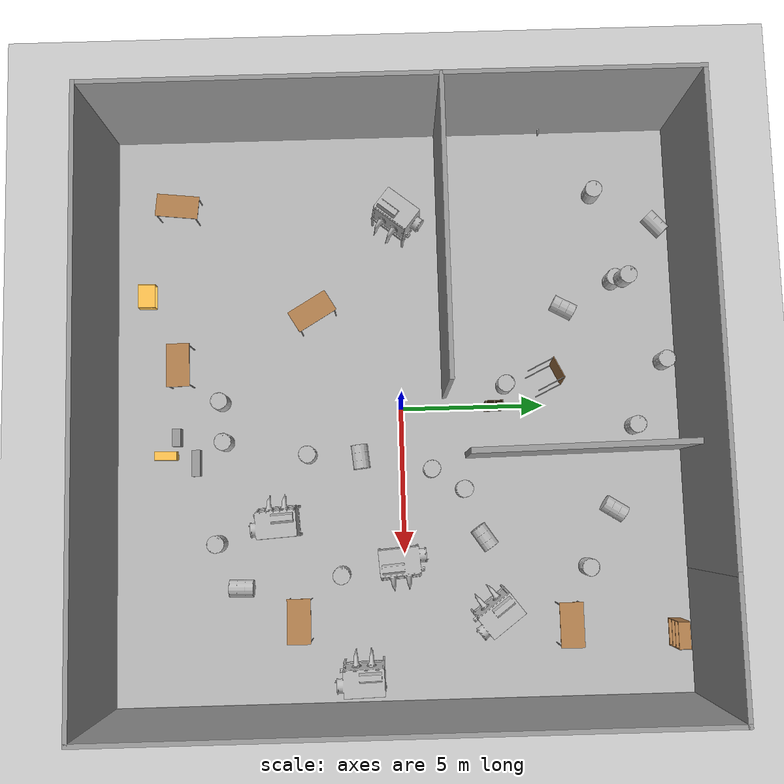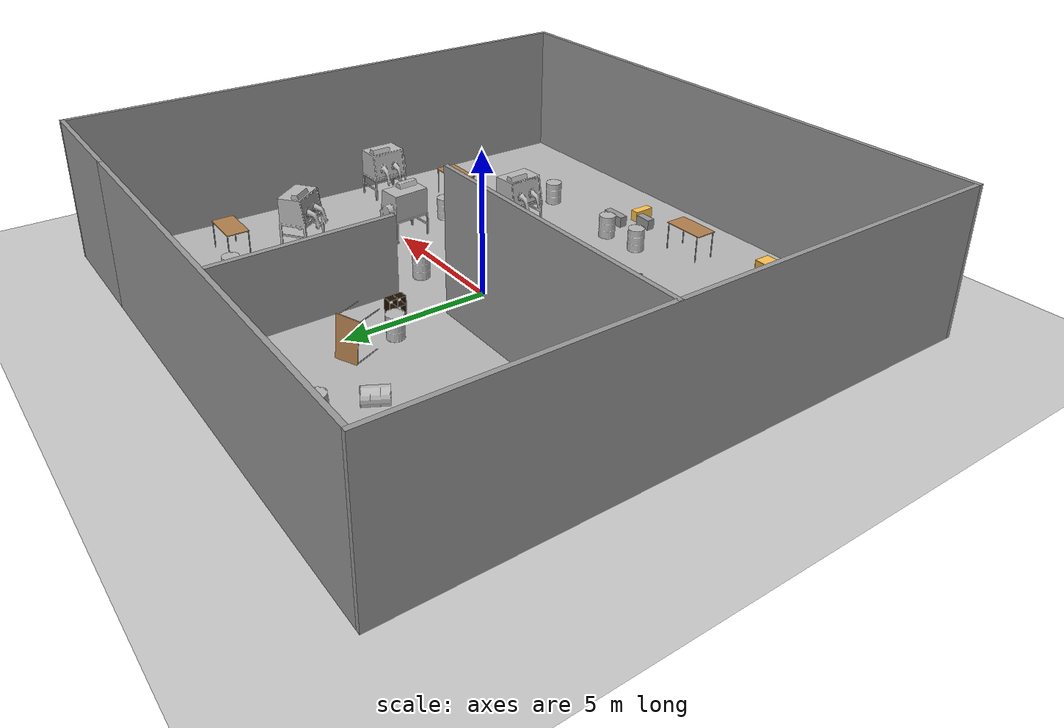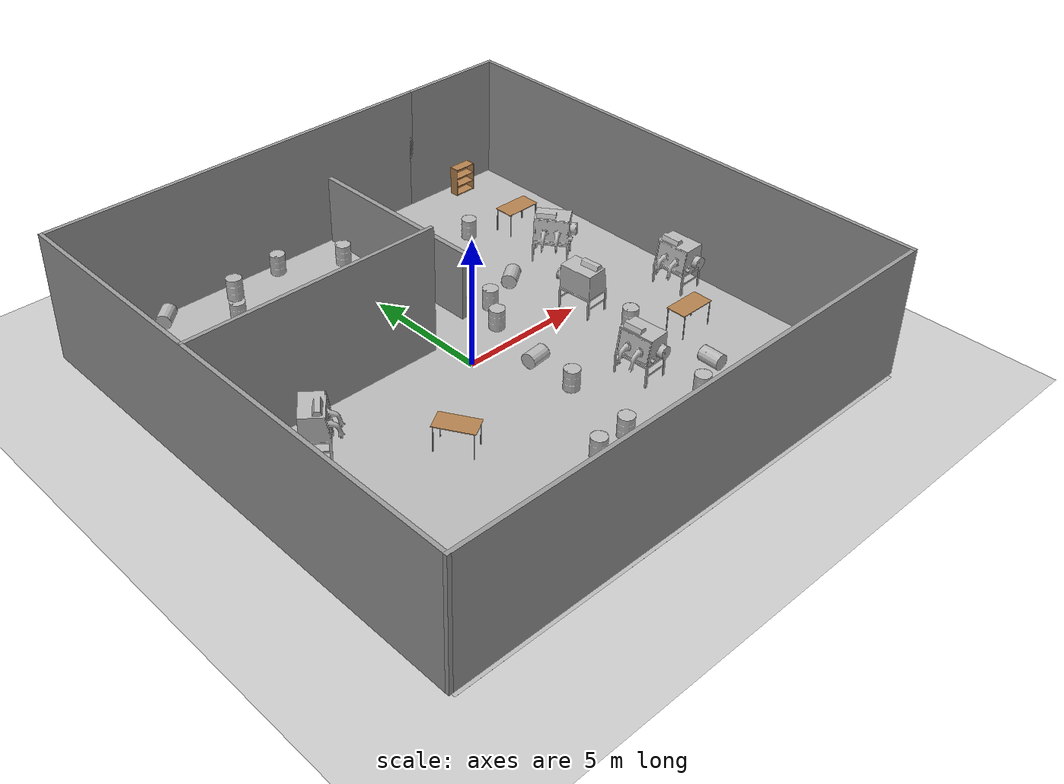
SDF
<sdf version="1.7">
 <world name="default">
  <model name="ground_plane">
   <static>1</static>
   <link name="link">
    <collision name="collision">
     <geometry><plane><normal>0 0 1</normal><size>100 100</size></plane></geometry>
     <surface><friction><ode><mu>100</mu><mu2>50</mu2></ode></friction></surface>
    </collision>
    <visual name="visual">
     <cast_shadows>0</cast_shadows>
     <geometry><plane><normal>0 0 1</normal><size>100 100</size></plane></geometry>
     <material>
      <script><uri>file://media/materials/scripts/gazebo.material</uri><name>Gazebo/Grey</name></script>
     </material>
    </visual>
   </link>
  </model>
  <gravity>0 0 -9.8</gravity>
  <magnetic_field>6e-06 2.3e-05 -4.2e-05</magnetic_field>
  <atmosphere type="adiabatic"/>
  <physics type="ode">
   <max_step_size>0.001</max_step_size>
   <real_time_factor>1</real_time_factor>
   <real_time_update_rate>1000</real_time_update_rate>
  </physics>
  <scene><ambient>0.4 0.4 0.4 1</ambient><background>0.7 0.7 0.7 1</background><shadows>1</shadows></scene>
  <audio><device>default</device></audio>
  <spherical_coordinates>
   <surface_model>EARTH_WGS84</surface_model>
   <latitude_deg>0</latitude_deg>
   <longitude_deg>0</longitude_deg>
   <elevation>0</elevation>
   <heading_deg>0</heading_deg>
  </spherical_coordinates>
  <model name="table_clone_0">
   <static>1</static>
   <link name="link">
    <collision name="surface">
     <pose>0 0 1 0 -0 0</pose>
     <geometry><box><size>1.5 0.8 0.03</size></box></geometry>
     <surface><friction><ode><mu>0.6</mu><mu2>0.6</mu2></ode></friction></surface>
    </collision>
    <visual name="visual1">
     <pose>0 0 1 0 -0 0</pose>
     <geometry><box><size>1.5 0.8 0.03</size></box></geometry>
     <material>
      <script><uri>file://media/materials/scripts/gazebo.material</uri><name>Gazebo/Wood</name></script>
     </material>
    </visual>
    <collision name="front_left_leg">
     <pose>0.68 0.38 0.5 0 -0 0</pose>
     <geometry><cylinder><radius>0.02</radius><length>1</length></cylinder></geometry>
    </collision>
    <visual name="front_left_leg">
     <pose>0.68 0.38 0.5 0 -0 0</pose>
     <geometry><cylinder><radius>0.02</radius><length>1</length></cylinder></geometry>
     <material>
      <script><uri>file://media/materials/scripts/gazebo.material</uri><name>Gazebo/Grey</name></script>
     </material>
    </visual>
    <collision name="front_right_leg">
     <pose>0.68 -0.38 0.5 0 -0 0</pose>
     <geometry><cylinder><radius>0.02</radius><length>1</length></cylinder></geometry>
    </collision>
    <visual name="front_right_leg">
     <pose>0.68 -0.38 0.5 0 -0 0</pose>
     <geometry><cylinder><radius>0.02</radius><length>1</length></cylinder></geometry>
     <material>
      <script><uri>file://media/materials/scripts/gazebo.material</uri><name>Gazebo/Grey</name></script>
     </material>
    </visual>
    <collision name="back_right_leg">
     <pose>-0.68 -0.38 0.5 0 -0 0</pose>
     <geometry><cylinder><radius>0.02</radius><length>1</length></cylinder></geometry>
    </collision>
    <visual name="back_right_leg">
     <pose>-0.68 -0.38 0.5 0 -0 0</pose>
     <geometry><cylinder><radius>0.02</radius><length>1</length></cylinder></geometry>
     <material>
      <script><uri>file://media/materials/scripts/gazebo.material</uri><name>Gazebo/Grey</name></script>
     </material>
    </visual>
    <collision name="back_left_leg">
     <pose>-0.68 0.38 0.5 0 -0 0</pose>
     <geometry><cylinder><radius>0.02</radius><length>1</length></cylinder></geometry>
    </collision>
    <visual name="back_left_leg">
     <pose>-0.68 0.38 0.5 0 -0 0</pose>
     <geometry><cylinder><radius>0.02</radius><length>1</length></cylinder></geometry>
     <material>
      <script><uri>file://media/materials/scripts/gazebo.material</uri><name>Gazebo/Grey</name></script>
     </material>
    </visual>
   </link>
   <pose>7.49547 5.50444 0 0 -0 0</pose>
  </model>
  <model name="table_clone_3">
   <static>1</static>
   <link name="link">
    <collision name="surface">
     <pose>0 0 1 0 -0 0</pose>
     <geometry><box><size>1.5 0.8 0.03</size></box></geometry>
     <surface><friction><ode><mu>0.6</mu><mu2>0.6</mu2></ode></friction></surface>
    </collision>
    <visual name="visual1">
     <pose>0 0 1 0 -0 0</pose>
     <geometry><box><size>1.5 0.8 0.03</size></box></geometry>
     <material>
      <script><uri>file://media/materials/scripts/gazebo.material</uri><name>Gazebo/Wood</name></script>
     </material>
    </visual>
    <collision name="front_left_leg">
     <pose>0.68 0.38 0.5 0 -0 0</pose>
     <geometry><cylinder><radius>0.02</radius><length>1</length></cylinder></geometry>
    </collision>
    <visual name="front_left_leg">
     <pose>0.68 0.38 0.5 0 -0 0</pose>
     <geometry><cylinder><radius>0.02</radius><length>1</length></cylinder></geometry>
     <material>
      <script><uri>file://media/materials/scripts/gazebo.material</uri><name>Gazebo/Grey</name></script>
     </material>
    </visual>
    <collision name="front_right_leg">
     <pose>0.68 -0.38 0.5 0 -0 0</pose>
     <geometry><cylinder><radius>0.02</radius><length>1</length></cylinder></geometry>
    </collision>
    <visual name="front_right_leg">
     <pose>0.68 -0.38 0.5 0 -0 0</pose>
     <geometry><cylinder><radius>0.02</radius><length>1</length></cylinder></geometry>
     <material>
      <script><uri>file://media/materials/scripts/gazebo.material</uri><name>Gazebo/Grey</name></script>
     </material>
    </visual>
    <collision name="back_right_leg">
     <pose>-0.68 -0.38 0.5 0 -0 0</pose>
     <geometry><cylinder><radius>0.02</radius><length>1</length></cylinder></geometry>
    </collision>
    <visual name="back_right_leg">
     <pose>-0.68 -0.38 0.5 0 -0 0</pose>
     <geometry><cylinder><radius>0.02</radius><length>1</length></cylinder></geometry>
     <material>
      <script><uri>file://media/materials/scripts/gazebo.material</uri><name>Gazebo/Grey</name></script>
     </material>
    </visual>
    <collision name="back_left_leg">
     <pose>-0.68 0.38 0.5 0 -0 0</pose>
     <geometry><cylinder><radius>0.02</radius><length>1</length></cylinder></geometry>
    </collision>
    <visual name="back_left_leg">
     <pose>-0.68 0.38 0.5 0 -0 0</pose>
     <geometry><cylinder><radius>0.02</radius><length>1</length></cylinder></geometry>
     <material>
      <script><uri>file://media/materials/scripts/gazebo.material</uri><name>Gazebo/Grey</name></script>
     </material>
    </visual>
   </link>
   <pose>-3.39341 -2.98007 0.052064 0 0 -1.03174</pose>
  </model>
  <model name="table_clone_6">
   <static>1</static>
   <link name="link">
    <collision name="surface">
     <pose>0 0 1 0 -0 0</pose>
     <geometry><box><size>1.5 0.8 0.03</size></box></geometry>
     <surface><friction><ode><mu>0.6</mu><mu2>0.6</mu2></ode></friction></surface>
    </collision>
    <visual name="visual1">
     <pose>0 0 1 0 -0 0</pose>
     <geometry><box><size>1.5 0.8 0.03</size></box></geometry>
     <material>
      <script><uri>file://media/materials/scripts/gazebo.material</uri><name>Gazebo/Wood</name></script>
     </material>
    </visual>
    <collision name="front_left_leg">
     <pose>0.68 0.38 0.5 0 -0 0</pose>
     <geometry><cylinder><radius>0.02</radius><length>1</length></cylinder></geometry>
    </collision>
    <visual name="front_left_leg">
     <pose>0.68 0.38 0.5 0 -0 0</pose>
     <geometry><cylinder><radius>0.02</radius><length>1</length></cylinder></geometry>
     <material>
      <script><uri>file://media/materials/scripts/gazebo.material</uri><name>Gazebo/Grey</name></script>
     </material>
    </visual>
    <collision name="front_right_leg">
     <pose>0.68 -0.38 0.5 0 -0 0</pose>
     <geometry><cylinder><radius>0.02</radius><length>1</length></cylinder></geometry>
    </collision>
    <visual name="front_right_leg">
     <pose>0.68 -0.38 0.5 0 -0 0</pose>
     <geometry><cylinder><radius>0.02</radius><length>1</length></cylinder></geometry>
     <material>
      <script><uri>file://media/materials/scripts/gazebo.material</uri><name>Gazebo/Grey</name></script>
     </material>
    </visual>
    <collision name="back_right_leg">
     <pose>-0.68 -0.38 0.5 0 -0 0</pose>
     <geometry><cylinder><radius>0.02</radius><length>1</length></cylinder></geometry>
    </collision>
    <visual name="back_right_leg">
     <pose>-0.68 -0.38 0.5 0 -0 0</pose>
     <geometry><cylinder><radius>0.02</radius><length>1</length></cylinder></geometry>
     <material>
      <script><uri>file://media/materials/scripts/gazebo.material</uri><name>Gazebo/Grey</name></script>
     </material>
    </visual>
    <collision name="back_left_leg">
     <pose>-0.68 0.38 0.5 0 -0 0</pose>
     <geometry><cylinder><radius>0.02</radius><length>1</length></cylinder></geometry>
    </collision>
    <visual name="back_left_leg">
     <pose>-0.68 0.38 0.5 0 -0 0</pose>
     <geometry><cylinder><radius>0.02</radius><length>1</length></cylinder></geometry>
     <material>
      <script><uri>file://media/materials/scripts/gazebo.material</uri><name>Gazebo/Grey</name></script>
     </material>
    </visual>
   </link>
   <pose>-7.31794 -7.66718 -0.127424 0 -0 1.46374</pose>
  </model>
  <model name="table_clone_9">
   <static>1</static>
   <link name="link">
    <collision name="surface">
     <pose>0 0 1 0 -0 0</pose>
     <geometry><box><size>1.5 0.8 0.03</size></box></geometry>
     <surface><friction><ode><mu>0.6</mu><mu2>0.6</mu2></ode></friction></surface>
    </collision>
    <visual name="visual1">
     <pose>0 0 1 0 -0 0</pose>
     <geometry><box><size>1.5 0.8 0.03</size></box></geometry>
     <material>
      <script><uri>file://media/materials/scripts/gazebo.material</uri><name>Gazebo/Wood</name></script>
     </material>
    </visual>
    <collision name="front_left_leg">
     <pose>0.68 0.38 0.5 0 -0 0</pose>
     <geometry><cylinder><radius>0.02</radius><length>1</length></cylinder></geometry>
    </collision>
    <visual name="front_left_leg">
     <pose>0.68 0.38 0.5 0 -0 0</pose>
     <geometry><cylinder><radius>0.02</radius><length>1</length></cylinder></geometry>
     <material>
      <script><uri>file://media/materials/scripts/gazebo.material</uri><name>Gazebo/Grey</name></script>
     </material>
    </visual>
    <collision name="front_right_leg">
     <pose>0.68 -0.38 0.5 0 -0 0</pose>
     <geometry><cylinder><radius>0.02</radius><length>1</length></cylinder></geometry>
    </collision>
    <visual name="front_right_leg">
     <pose>0.68 -0.38 0.5 0 -0 0</pose>
     <geometry><cylinder><radius>0.02</radius><length>1</length></cylinder></geometry>
     <material>
      <script><uri>file://media/materials/scripts/gazebo.material</uri><name>Gazebo/Grey</name></script>
     </material>
    </visual>
    <collision name="back_right_leg">
     <pose>-0.68 -0.38 0.5 0 -0 0</pose>
     <geometry><cylinder><radius>0.02</radius><length>1</length></cylinder></geometry>
    </collision>
    <visual name="back_right_leg">
     <pose>-0.68 -0.38 0.5 0 -0 0</pose>
     <geometry><cylinder><radius>0.02</radius><length>1</length></cylinder></geometry>
     <material>
      <script><uri>file://media/materials/scripts/gazebo.material</uri><name>Gazebo/Grey</name></script>
     </material>
    </visual>
    <collision name="back_left_leg">
     <pose>-0.68 0.38 0.5 0 -0 0</pose>
     <geometry><cylinder><radius>0.02</radius><length>1</length></cylinder></geometry>
    </collision>
    <visual name="back_left_leg">
     <pose>-0.68 0.38 0.5 0 -0 0</pose>
     <geometry><cylinder><radius>0.02</radius><length>1</length></cylinder></geometry>
     <material>
      <script><uri>file://media/materials/scripts/gazebo.material</uri><name>Gazebo/Grey</name></script>
     </material>
    </visual>
   </link>
   <pose>-1.64837 -7.6314 0 0 -0 0</pose>
  </model>
  <model name="table_clone_12">
   <static>1</static>
   <link name="link">
    <collision name="surface">
     <pose>0 0 1 0 -0 0</pose>
     <geometry><box><size>1.5 0.8 0.03</size></box></geometry>
     <surface><friction><ode><mu>0.6</mu><mu2>0.6</mu2></ode></friction></surface>
    </collision>
    <visual name="visual1">
     <pose>0 0 1 0 -0 0</pose>
     <geometry><box><size>1.5 0.8 0.03</size></box></geometry>
     <material>
      <script><uri>file://media/materials/scripts/gazebo.material</uri><name>Gazebo/Wood</name></script>
     </material>
    </visual>
    <collision name="front_left_leg">
     <pose>0.68 0.38 0.5 0 -0 0</pose>
     <geometry><cylinder><radius>0.02</radius><length>1</length></cylinder></geometry>
    </collision>
    <visual name="front_left_leg">
     <pose>0.68 0.38 0.5 0 -0 0</pose>
     <geometry><cylinder><radius>0.02</radius><length>1</length></cylinder></geometry>
     <material>
      <script><uri>file://media/materials/scripts/gazebo.material</uri><name>Gazebo/Grey</name></script>
     </material>
    </visual>
    <collision name="front_right_leg">
     <pose>0.68 -0.38 0.5 0 -0 0</pose>
     <geometry><cylinder><radius>0.02</radius><length>1</length></cylinder></geometry>
    </collision>
    <visual name="front_right_leg">
     <pose>0.68 -0.38 0.5 0 -0 0</pose>
     <geometry><cylinder><radius>0.02</radius><length>1</length></cylinder></geometry>
     <material>
      <script><uri>file://media/materials/scripts/gazebo.material</uri><name>Gazebo/Grey</name></script>
     </material>
    </visual>
    <collision name="back_right_leg">
     <pose>-0.68 -0.38 0.5 0 -0 0</pose>
     <geometry><cylinder><radius>0.02</radius><length>1</length></cylinder></geometry>
    </collision>
    <visual name="back_right_leg">
     <pose>-0.68 -0.38 0.5 0 -0 0</pose>
     <geometry><cylinder><radius>0.02</radius><length>1</length></cylinder></geometry>
     <material>
      <script><uri>file://media/materials/scripts/gazebo.material</uri><name>Gazebo/Grey</name></script>
     </material>
    </visual>
    <collision name="back_left_leg">
     <pose>-0.68 0.38 0.5 0 -0 0</pose>
     <geometry><cylinder><radius>0.02</radius><length>1</length></cylinder></geometry>
    </collision>
    <visual name="back_left_leg">
     <pose>-0.68 0.38 0.5 0 -0 0</pose>
     <geometry><cylinder><radius>0.02</radius><length>1</length></cylinder></geometry>
     <material>
      <script><uri>file://media/materials/scripts/gazebo.material</uri><name>Gazebo/Grey</name></script>
     </material>
    </visual>
   </link>
   <pose>7.13207 -3.60636 0 0 -0 0</pose>
  </model>
  <model name="bookshelf">
   <static>1</static>
   <link name="link">
    <inertial><mass>1</mass></inertial>
    <collision name="back">
     <pose>0 0.005 0.6 0 -0 0</pose>
     <geometry><box><size>0.9 0.01 1.2</size></box></geometry>
    </collision>
    <visual name="visual1">
     <pose>0 0.005 0.6 0 -0 0</pose>
     <geometry><box><size>0.9 0.01 1.2</size></box></geometry>
     <material>
      <script><uri>file://media/materials/scripts/gazebo.material</uri><name>Gazebo/Wood</name></script>
     </material>
    </visual>
    <collision name="left_side">
     <pose>0.45 -0.195 0.6 0 -0 0</pose>
     <geometry><box><size>0.02 0.4 1.2</size></box></geometry>
    </collision>
    <visual name="visual2">
     <pose>0.45 -0.195 0.6 0 -0 0</pose>
     <geometry><box><size>0.02 0.4 1.2</size></box></geometry>
     <material>
      <script><uri>file://media/materials/scripts/gazebo.material</uri><name>Gazebo/Wood</name></script>
     </material>
    </visual>
    <collision name="right_side">
     <pose>-0.45 -0.195 0.6 0 -0 0</pose>
     <geometry><box><size>0.02 0.4 1.2</size></box></geometry>
    </collision>
    <visual name="visual3">
     <pose>-0.45 -0.195 0.6 0 -0 0</pose>
     <geometry><box><size>0.02 0.4 1.2</size></box></geometry>
     <material>
      <script><uri>file://media/materials/scripts/gazebo.material</uri><name>Gazebo/Wood</name></script>
     </material>
    </visual>
    <collision name="bottom">
     <pose>0 -0.195 0.03 0 -0 0</pose>
     <geometry><box><size>0.88 0.4 0.06</size></box></geometry>
    </collision>
    <visual name="visual4">
     <pose>0 -0.195 0.03 0 -0 0</pose>
     <geometry><box><size>0.88 0.4 0.06</size></box></geometry>
     <material>
      <script><uri>file://media/materials/scripts/gazebo.material</uri><name>Gazebo/Wood</name></script>
     </material>
    </visual>
    <collision name="top">
     <pose>0 -0.195 1.19 0 -0 0</pose>
     <geometry><box><size>0.88 0.4 0.02</size></box></geometry>
    </collision>
    <visual name="visual5">
     <pose>0 -0.195 1.19 0 -0 0</pose>
     <geometry><box><size>0.88 0.4 0.02</size></box></geometry>
     <material>
      <script><uri>file://media/materials/scripts/gazebo.material</uri><name>Gazebo/Wood</name></script>
     </material>
    </visual>
    <collision name="low_shelf">
     <pose>0 -0.195 0.43 0 -0 0</pose>
     <geometry><box><size>0.88 0.4 0.02</size></box></geometry>
    </collision>
    <visual name="visual6">
     <pose>0 -0.195 0.43 0 -0 0</pose>
     <geometry><box><size>0.88 0.4 0.02</size></box></geometry>
     <material>
      <script><uri>file://media/materials/scripts/gazebo.material</uri><name>Gazebo/Wood</name></script>
     </material>
    </visual>
    <collision name="high_shelf">
     <pose>0 -0.195 0.8 0 -0 0</pose>
     <geometry><box><size>0.88 0.4 0.02</size></box></geometry>
    </collision>
    <visual name="visual7">
     <pose>0 -0.195 0.8 0 -0 0</pose>
     <geometry><box><size>0.88 0.4 0.02</size></box></geometry>
     <material>
      <script><uri>file://media/materials/scripts/gazebo.material</uri><name>Gazebo/Wood</name></script>
     </material>
    </visual>
   </link>
   <pose>7.91502 9.37231 0 0 -0 0</pose>
  </model>
  <model name="6_Cube_StorageE">
   <link name="Wall_0">
    <pose>0 0 0.01 0 -0 0</pose>
    <inertial>
     <mass>1.6201</mass>
     <inertia><ixx>0.0119</ixx><iyy>0.0631</iyy><izz>0.0513</izz><ixy>0</ixy><ixz>0</ixz><iyz>0</iyz></inertia>
    </inertial>
    <collision name="Wall_0_Collision"><geometry><box><size>0.616 0.296 0.02</size></box></geometry></collision>
    <visual name="Wall_0_Visual">
     <geometry><box><size>0.616 0.296 0.02</size></box></geometry>
     <material>
      <script><uri>file://media/materials/scripts/gazebo.material</uri><name>Gazebo/Grey</name></script>
      <ambient>0.105882 0.0509804 0 1</ambient>
     </material>
    </visual>
   </link>
   <joint name="0_2" type="fixed">
    <pose>-0.308 0 0 0 -0 0</pose>
    <parent>Wall_2</parent>
    <child>Wall_0</child>
    <axis><xyz>1 0 0</xyz><limit><lower>-1e+16</lower><upper>1e+16</upper></limit></axis>
   </joint>
   <joint name="0_12" type="fixed">
    <parent>Wall_12</parent>
    <child>Wall_0</child>
    <axis><xyz>0 0 1</xyz><limit><lower>-1e+16</lower><upper>1e+16</upper></limit></axis>
   </joint>
   <joint name="0_4" type="fixed">
    <pose>0.308 0 0 0 -0 0</pose>
    <parent>Wall_4</parent>
    <child>Wall_0</child>
    <axis><xyz>1 0 0</xyz><limit><lower>-1e+16</lower><upper>1e+16</upper></limit></axis>
   </joint>
   <link name="Wall_10">
    <pose>0 0 0.61 0 -0 0</pose>
    <inertial>
     <mass>1.6201</mass>
     <inertia><ixx>0.0119</ixx><iyy>0.0631</iyy><izz>0.0513</izz><ixy>0</ixy><ixz>0</ixz><iyz>0</iyz></inertia>
    </inertial>
    <collision name="Wall_10_Collision"><geometry><box><size>0.616 0.296 0.02</size></box></geometry></collision>
    <visual name="Wall_10_Visual">
     <geometry><box><size>0.616 0.296 0.02</size></box></geometry>
     <material>
      <script><uri>file://media/materials/scripts/gazebo.material</uri><name>Gazebo/Grey</name></script>
      <ambient>0.105882 0.0509804 0 1</ambient>
     </material>
    </visual>
   </link>
   <joint name="10_2" type="fixed">
    <pose>-0.308 0 0 0 -0 0</pose>
    <parent>Wall_2</parent>
    <child>Wall_10</child>
    <axis><xyz>1 0 0</xyz><limit><lower>-1e+16</lower><upper>1e+16</upper></limit></axis>
   </joint>
   <joint name="10_12" type="fixed">
    <parent>Wall_12</parent>
    <child>Wall_10</child>
    <axis><xyz>0 0 1</xyz><limit><lower>-1e+16</lower><upper>1e+16</upper></limit></axis>
   </joint>
   <joint name="10_4" type="fixed">
    <pose>0.308 0 0 0 -0 0</pose>
    <parent>Wall_4</parent>
    <child>Wall_10</child>
    <axis><xyz>1 0 0</xyz><limit><lower>-1e+16</lower><upper>1e+16</upper></limit></axis>
   </joint>
   <link name="Wall_12">
    <pose>0 0 0.4575 0 -0 0</pose>
    <inertial>
     <mass>2.4065</mass>
     <inertia><ixx>0.0177</ixx><iyy>0.1855</iyy><izz>0.168</izz><ixy>0</ixy><ixz>0</ixz><iyz>0</iyz></inertia>
    </inertial>
    <collision name="Wall_12_Collision"><geometry><box><size>0.02 0.296 0.915</size></box></geometry></collision>
    <visual name="Wall_12_Visual">
     <geometry><box><size>0.02 0.296 0.915</size></box></geometry>
     <material>
      <script><uri>file://media/materials/scripts/gazebo.material</uri><name>Gazebo/Grey</name></script>
      <ambient>0.105882 0.0509804 0 1</ambient>
     </material>
    </visual>
   </link>
   <link name="Wall_2">
    <pose>-0.298 0 0.4575 0 -0 0</pose>
    <inertial>
     <mass>2.4065</mass>
     <inertia><ixx>0.0177</ixx><iyy>0.1855</iyy><izz>0.168</izz><ixy>0</ixy><ixz>0</ixz><iyz>0</iyz></inertia>
    </inertial>
    <collision name="Wall_2_Collision"><geometry><box><size>0.02 0.296 0.915</size></box></geometry></collision>
    <visual name="Wall_2_Visual">
     <geometry><box><size>0.02 0.296 0.915</size></box></geometry>
     <material>
      <script><uri>file://media/materials/scripts/gazebo.material</uri><name>Gazebo/Grey</name></script>
      <ambient>0.105882 0.0509804 0 1</ambient>
     </material>
    </visual>
   </link>
   <link name="Wall_4">
    <pose>0.298 0 0.4575 0 -0 0</pose>
    <inertial>
     <mass>2.4065</mass>
     <inertia><ixx>0.0177</ixx><iyy>0.1855</iyy><izz>0.168</izz><ixy>0</ixy><ixz>0</ixz><iyz>0</iyz></inertia>
    </inertial>
    <collision name="Wall_4_Collision"><geometry><box><size>0.02 0.296 0.915</size></box></geometry></collision>
    <visual name="Wall_4_Visual">
     <geometry><box><size>0.02 0.296 0.915</size></box></geometry>
     <material>
      <script><uri>file://media/materials/scripts/gazebo.material</uri><name>Gazebo/Grey</name></script>
      <ambient>0.105882 0.0509804 0 1</ambient>
     </material>
    </visual>
   </link>
   <link name="Wall_6">
    <pose>0 0 0.905 0 -0 0</pose>
    <inertial>
     <mass>1.6201</mass>
     <inertia><ixx>0.0119</ixx><iyy>0.0631</iyy><izz>0.0513</izz><ixy>0</ixy><ixz>0</ixz><iyz>0</iyz></inertia>
    </inertial>
    <collision name="Wall_6_Collision"><geometry><box><size>0.616 0.296 0.02</size></box></geometry></collision>
    <visual name="Wall_6_Visual">
     <geometry><box><size>0.616 0.296 0.02</size></box></geometry>
     <material>
      <script><uri>file://media/materials/scripts/gazebo.material</uri><name>Gazebo/Grey</name></script>
      <ambient>0.105882 0.0509804 0 1</ambient>
     </material>
    </visual>
   </link>
   <joint name="6_2" type="fixed">
    <pose>-0.308 0 0 0 -0 0</pose>
    <parent>Wall_2</parent>
    <child>Wall_6</child>
    <axis><xyz>2 0 0</xyz><limit><lower>-1e+16</lower><upper>1e+16</upper></limit></axis>
   </joint>
   <joint name="6_12" type="fixed">
    <parent>Wall_12</parent>
    <child>Wall_6</child>
    <axis><xyz>0 0 1</xyz><limit><lower>-1e+16</lower><upper>1e+16</upper></limit></axis>
   </joint>
   <joint name="6_4" type="fixed">
    <pose>0.308 0 0 0 -0 0</pose>
    <parent>Wall_4</parent>
    <child>Wall_6</child>
    <axis><xyz>1 0 0</xyz><limit><lower>-1e+16</lower><upper>1e+16</upper></limit></axis>
   </joint>
   <link name="Wall_8">
    <pose>0 0 0.305 0 -0 0</pose>
    <inertial>
     <mass>1.6201</mass>
     <inertia><ixx>0.0119</ixx><iyy>0.0631</iyy><izz>0.0513</izz><ixy>0</ixy><ixz>0</ixz><iyz>0</iyz></inertia>
    </inertial>
    <collision name="Wall_8_Collision"><geometry><box><size>0.616 0.296 0.02</size></box></geometry></collision>
    <visual name="Wall_8_Visual">
     <geometry><box><size>0.616 0.296 0.02</size></box></geometry>
     <material>
      <script><uri>file://media/materials/scripts/gazebo.material</uri><name>Gazebo/Grey</name></script>
      <ambient>0.105882 0.0509804 0 1</ambient>
     </material>
    </visual>
   </link>
   <joint name="8_2" type="fixed">
    <pose>-0.308 0 0 0 -0 0</pose>
    <parent>Wall_2</parent>
    <child>Wall_8</child>
    <axis><xyz>1 0 0</xyz><limit><lower>-1e+16</lower><upper>1e+16</upper></limit></axis>
   </joint>
   <joint name="8_12" type="fixed">
    <parent>Wall_12</parent>
    <child>Wall_8</child>
    <axis><xyz>0 0 1</xyz><limit><lower>-1e+16</lower><upper>1e+16</upper></limit></axis>
   </joint>
   <joint name="8_4" type="fixed">
    <pose>0.308 0 0 0 -0 0</pose>
    <parent>Wall_4</parent>
    <child>Wall_8</child>
    <axis><xyz>1 0 0</xyz><limit><lower>-1e+16</lower><upper>1e+16</upper></limit></axis>
   </joint>
   <static>1</static>
   <pose>0.006936 3.21973 0.018397 0 -0 1.59588</pose>
  </model>
  <model name="book_1">
   <link name="cover">
    <pose>0 -0.000108 0.015405 0 -0 0</pose>
    <visual name="visual">
     <geometry><box><size>0.245 0.16 0.03</size></box></geometry>
     <material>
      <script>
       <uri>model://book_1/materials/scripts</uri>
       <uri>model://book_1/materials/textures</uri>
       <name>book_1</name>
      </script>
     </material>
    </visual>
    <collision name="collision"><geometry><box><size>0.245 0.16 0.03</size></box></geometry></collision>
   </link>
   <link name="page">
    <pose>0 0.000608 0.015405 0 -0 0</pose>
    <visual name="visual">
     <geometry><box><size>0.24502 0.15862 0.028</size></box></geometry>
     <material>
      <lighting>1</lighting>
      <ambient>1 1 1 1</ambient>
      <diffuse>1 1 1 1</diffuse>
      <specular>0.01 0.01 0.01 1</specular>
      <emissive>0 0 0 1</emissive>
      <shader type="vertex"><normal_map>__default__</normal_map></shader>
     </material>
    </visual>
    <collision name="collision"><geometry><box><size>0.245 0.16 0.03</size></box></geometry></collision>
   </link>
   <static>1</static>
   <pose>-9.75646 5.15913 0.632128 2.49149 1.54274 -2.11523</pose>
  </model>
  <light name="sun" type="directional">
   <pose>-1.13936 -0.095855 10 0 -0 0</pose>
   <diffuse>0.8 0.8 0.8 1</diffuse>
   <specular>0.2 0.2 0.2 1</specular>
   <attenuation>
    <range>1000</range>
    <constant>0.9</constant>
    <linear>0.01</linear>
    <quadratic>0.001</quadratic>
   </attenuation>
   <direction>-0.5 0.1 -0.9</direction>
   <spot><inner_angle>0</inner_angle><outer_angle>0</outer_angle><falloff>0</falloff></spot>
  </light>
  <model name="toxic_barrel_clone_2">
   <static>0</static>
   <link name="link">
    <visual name="visual">
     <geometry><mesh><uri>model://toxic_barrel/meshes/barrel_red.obj</uri></mesh></geometry>
    </visual>
    <collision name="collision">
     <geometry><mesh><uri>model://toxic_barrel/meshes/barrel_red.obj</uri></mesh></geometry>
    </collision>
    <inertial>
     <inertia><ixx>1</ixx><ixy>0</ixy><ixz>0</ixz><iyy>1</iyy><iyz>0</iyz><izz>1</izz></inertia>
     <mass>1</mass>
    </inertial>
   </link>
   <pose>-1.44084 9.2653 0.427001 1.57079 4e-06 0.702762</pose>
  </model>
  <model name="toxic_barrel_clone_8">
   <static>0</static>
   <link name="link">
    <visual name="visual">
     <geometry><mesh><uri>model://toxic_barrel/meshes/barrel_red.obj</uri></mesh></geometry>
    </visual>
    <collision name="collision">
     <geometry><mesh><uri>model://toxic_barrel/meshes/barrel_red.obj</uri></mesh></geometry>
    </collision>
    <inertial>
     <inertia><ixx>1</ixx><ixy>0</ixy><ixz>0</ixz><iyy>1</iyy><iyz>0</iyz><izz>1</izz></inertia>
     <mass>1</mass>
    </inertial>
   </link>
   <pose>4.50491 -6.41619 0.426999 1.57079 -6e-06 -0.419629</pose>
  </model>
  <model name="toxic_barrel_clone_12">
   <static>0</static>
   <link name="link">
    <visual name="visual">
     <geometry><mesh><uri>model://toxic_barrel/meshes/barrel_red.obj</uri></mesh></geometry>
    </visual>
    <collision name="collision">
     <geometry><mesh><uri>model://toxic_barrel/meshes/barrel_red.obj</uri></mesh></geometry>
    </collision>
    <inertial>
     <inertia><ixx>1</ixx><ixy>0</ixy><ixz>0</ixz><iyy>1</iyy><iyz>0</iyz><izz>1</izz></inertia>
     <mass>1</mass>
    </inertial>
   </link>
   <pose>3.67794 7.27674 0.306205 -1e-06 -0.19638 -0.566941</pose>
  </model>
  <model name="toxic_barrel_clone_12_clone">
   <static>0</static>
   <link name="link">
    <visual name="visual">
     <geometry><mesh><uri>model://toxic_barrel/meshes/barrel_red.obj</uri></mesh></geometry>
    </visual>
    <collision name="collision">
     <geometry><mesh><uri>model://toxic_barrel/meshes/barrel_red.obj</uri></mesh></geometry>
    </collision>
    <inertial>
     <inertia><ixx>1</ixx><ixy>0</ixy><ixz>0</ixz><iyy>1</iyy><iyz>0</iyz><izz>1</izz></inertia>
     <mass>1</mass>
    </inertial>
   </link>
   <pose>5.62038 6.27093 0.426321 -1.57002 0.004007 -0.669122</pose>
  </model>
  <model name="toxic_barrel_clone_12_clone_clone_0">
   <static>0</static>
   <link name="link">
    <visual name="visual">
     <geometry><mesh><uri>model://toxic_barrel/meshes/barrel_red.obj</uri></mesh></geometry>
    </visual>
    <collision name="collision">
     <geometry><mesh><uri>model://toxic_barrel/meshes/barrel_red.obj</uri></mesh></geometry>
    </collision>
    <inertial>
     <inertia><ixx>1</ixx><ixy>0</ixy><ixz>0</ixz><iyy>1</iyy><iyz>0</iyz><izz>1</izz></inertia>
     <mass>1</mass>
    </inertial>
   </link>
   <pose>-7.56909 7.03031 0.426999 1.57078 2e-05 -0.63894</pose>
  </model>
  <model name="toxic_barrel_clone_12_clone_clone_1">
   <static>0</static>
   <link name="link">
    <visual name="visual">
     <geometry><mesh><uri>model://toxic_barrel/meshes/barrel_red.obj</uri></mesh></geometry>
    </visual>
    <collision name="collision">
     <geometry><mesh><uri>model://toxic_barrel/meshes/barrel_red.obj</uri></mesh></geometry>
    </collision>
    <inertial>
     <inertia><ixx>1</ixx><ixy>0</ixy><ixz>0</ixz><iyy>1</iyy><iyz>0</iyz><izz>1</izz></inertia>
     <mass>1</mass>
    </inertial>
   </link>
   <pose>-6.36904 9.24036 0.306203 -1.1e-05 -0.981735 2.31359</pose>
  </model>
  <model name="toxic_barrel_clone_10_clone">
   <static>0</static>
   <link name="link">
    <visual name="visual">
     <geometry><mesh><uri>model://toxic_barrel/meshes/barrel_red.obj</uri></mesh></geometry>
    </visual>
    <collision name="collision">
     <geometry><mesh><uri>model://toxic_barrel/meshes/barrel_red.obj</uri></mesh></geometry>
    </collision>
    <inertial>
     <inertia><ixx>1</ixx><ixy>0</ixy><ixz>0</ixz><iyy>1</iyy><iyz>0</iyz><izz>1</izz></inertia>
     <mass>1</mass>
    </inertial>
   </link>
   <pose>-4.37653 7.61873 0.426961 1.5708 5e-06 0.073846</pose>
  </model>
  <model name="toxic_barrel_clone_12_clone_clone_2_clone_4">
   <static>0</static>
   <link name="link">
    <visual name="visual">
     <geometry><mesh><uri>model://toxic_barrel/meshes/barrel_red.obj</uri></mesh></geometry>
    </visual>
    <collision name="collision">
     <geometry><mesh><uri>model://toxic_barrel/meshes/barrel_red.obj</uri></mesh></geometry>
    </collision>
    <inertial>
     <inertia><ixx>1</ixx><ixy>0</ixy><ixz>0</ixz><iyy>1</iyy><iyz>0</iyz><izz>1</izz></inertia>
     <mass>1</mass>
    </inertial>
   </link>
   <pose>0.808928 8.13402 0.426992 1.57079 2e-06 -0.498665</pose>
  </model>
  <model name="toxic_barrel_clone_12_clone_clone_2_clone_5">
   <static>0</static>
   <link name="link">
    <visual name="visual">
     <geometry><mesh><uri>model://toxic_barrel/meshes/barrel_red.obj</uri></mesh></geometry>
    </visual>
    <collision name="collision">
     <geometry><mesh><uri>model://toxic_barrel/meshes/barrel_red.obj</uri></mesh></geometry>
    </collision>
    <inertial>
     <inertia><ixx>1</ixx><ixy>0</ixy><ixz>0</ixz><iyy>1</iyy><iyz>0</iyz><izz>1</izz></inertia>
     <mass>1</mass>
    </inertial>
   </link>
   <pose>-4.26123 7.86121 1.24964 1.50571 -0.009154 -0.582406</pose>
  </model>
  <model name="toxic_barrel_clone_12_clone_clone_2_clone_7">
   <static>0</static>
   <link name="link">
    <visual name="visual">
     <geometry><mesh><uri>model://toxic_barrel/meshes/barrel_red.obj</uri></mesh></geometry>
    </visual>
    <collision name="collision">
     <geometry><mesh><uri>model://toxic_barrel/meshes/barrel_red.obj</uri></mesh></geometry>
    </collision>
    <inertial>
     <inertia><ixx>1</ixx><ixy>0</ixy><ixz>0</ixz><iyy>1</iyy><iyz>0</iyz><izz>1</izz></inertia>
     <mass>1</mass>
    </inertial>
   </link>
   <pose>1.02049 -6.14673 0.427 1.57079 -3e-06 -0.178901</pose>
  </model>
  <model name="toxic_barrel_clone_7_clone_0_clone_1">
   <static>0</static>
   <link name="link">
    <visual name="visual">
     <geometry><mesh><uri>model://toxic_barrel/meshes/barrel_red.obj</uri></mesh></geometry>
    </visual>
    <collision name="collision">
     <geometry><mesh><uri>model://toxic_barrel/meshes/barrel_red.obj</uri></mesh></geometry>
    </collision>
    <inertial>
     <inertia><ixx>1</ixx><ixy>0</ixy><ixz>0</ixz><iyy>1</iyy><iyz>0</iyz><izz>1</izz></inertia>
     <mass>1</mass>
    </inertial>
   </link>
   <pose>1.53256 -3.2603 0.426991 1.5708 -3e-06 -0.055305</pose>
  </model>
  <model name="toxic_barrel_clone_7_clone_0_clone_2">
   <static>0</static>
   <link name="link">
    <visual name="visual">
     <geometry><mesh><uri>model://toxic_barrel/meshes/barrel_red.obj</uri></mesh></geometry>
    </visual>
    <collision name="collision">
     <geometry><mesh><uri>model://toxic_barrel/meshes/barrel_red.obj</uri></mesh></geometry>
    </collision>
    <inertial>
     <inertia><ixx>1</ixx><ixy>0</ixy><ixz>0</ixz><iyy>1</iyy><iyz>0</iyz><izz>1</izz></inertia>
     <mass>1</mass>
    </inertial>
   </link>
   <pose>-0.3847 -6.26591 0.42699 1.5708 -0 -0.136689</pose>
  </model>
  <model name="toxic_barrel_clone_7_clone_0_clone_3">
   <static>0</static>
   <link name="link">
    <visual name="visual">
     <geometry><mesh><uri>model://toxic_barrel/meshes/barrel_red.obj</uri></mesh></geometry>
    </visual>
    <collision name="collision">
     <geometry><mesh><uri>model://toxic_barrel/meshes/barrel_red.obj</uri></mesh></geometry>
    </collision>
    <inertial>
     <inertia><ixx>1</ixx><ixy>0</ixy><ixz>0</ixz><iyy>1</iyy><iyz>0</iyz><izz>1</izz></inertia>
     <mass>1</mass>
    </inertial>
   </link>
   <pose>5.67125 -2.16913 0.427 1.5708 -1e-06 -0.065267</pose>
  </model>
  <model name="toxic_barrel_clone_7_clone_0_clone_4">
   <static>0</static>
   <link name="link">
    <visual name="visual">
     <geometry><mesh><uri>model://toxic_barrel/meshes/barrel_red.obj</uri></mesh></geometry>
    </visual>
    <collision name="collision">
     <geometry><mesh><uri>model://toxic_barrel/meshes/barrel_red.obj</uri></mesh></geometry>
    </collision>
    <inertial>
     <inertia><ixx>1</ixx><ixy>0</ixy><ixz>0</ixz><iyy>1</iyy><iyz>0</iyz><izz>1</izz></inertia>
     <mass>1</mass>
    </inertial>
   </link>
   <pose>-0.731259 3.6571 0.426321 -1.57157 0.004007 0.934421</pose>
  </model>
  <model name="toxic_barrel_clone_7_clone_0_clone_5">
   <static>0</static>
   <link name="link">
    <visual name="visual">
     <geometry><mesh><uri>model://toxic_barrel/meshes/barrel_red.obj</uri></mesh></geometry>
    </visual>
    <collision name="collision">
     <geometry><mesh><uri>model://toxic_barrel/meshes/barrel_red.obj</uri></mesh></geometry>
    </collision>
    <inertial>
     <inertia><ixx>1</ixx><ixy>0</ixy><ixz>0</ixz><iyy>1</iyy><iyz>0</iyz><izz>1</izz></inertia>
     <mass>1</mass>
    </inertial>
   </link>
   <pose>2.85472 2.10729 0.426994 1.5708 1.3e-05 -0.057555</pose>
  </model>
  <model name="toxic_barrel_clone_7_clone_0_clone_6">
   <static>0</static>
   <link name="link">
    <visual name="visual">
     <geometry><mesh><uri>model://toxic_barrel/meshes/barrel_red.obj</uri></mesh></geometry>
    </visual>
    <collision name="collision">
     <geometry><mesh><uri>model://toxic_barrel/meshes/barrel_red.obj</uri></mesh></geometry>
    </collision>
    <inertial>
     <inertia><ixx>1</ixx><ixy>0</ixy><ixz>0</ixz><iyy>1</iyy><iyz>0</iyz><izz>1</izz></inertia>
     <mass>1</mass>
    </inertial>
   </link>
   <pose>-3.42253 5.81931 0.306202 0 0.589062 2.63808</pose>
  </model>
  <model name="toxic_barrel_clone_7_clone_0_clone_7">
   <static>0</static>
   <link name="link">
    <visual name="visual">
     <geometry><mesh><uri>model://toxic_barrel/meshes/barrel_red.obj</uri></mesh></geometry>
    </visual>
    <collision name="collision">
     <geometry><mesh><uri>model://toxic_barrel/meshes/barrel_red.obj</uri></mesh></geometry>
    </collision>
    <inertial>
     <inertia><ixx>1</ixx><ixy>0</ixy><ixz>0</ixz><iyy>1</iyy><iyz>0</iyz><izz>1</izz></inertia>
     <mass>1</mass>
    </inertial>
   </link>
   <pose>1.64205 -1.44287 0.306197 -3.14159 1.37441 1.67449</pose>
  </model>
  <model name="toxic_barrel_clone_7_clone_0_clone_8">
   <static>0</static>
   <link name="link">
    <visual name="visual">
     <geometry><mesh><uri>model://toxic_barrel/meshes/barrel_red.obj</uri></mesh></geometry>
    </visual>
    <collision name="collision">
     <geometry><mesh><uri>model://toxic_barrel/meshes/barrel_red.obj</uri></mesh></geometry>
    </collision>
    <inertial>
     <inertia><ixx>1</ixx><ixy>0</ixy><ixz>0</ixz><iyy>1</iyy><iyz>0</iyz><izz>1</izz></inertia>
     <mass>1</mass>
    </inertial>
   </link>
   <pose>2.14023 1.01126 0.427001 1.57079 2e-06 -0.048265</pose>
  </model>
  <model name="glovebox_clone">
   <static>0</static>
   <link name="link">
    <visual name="visual">
     <geometry><mesh><uri>model://glovebox/meshes/glovebox.obj</uri></mesh></geometry>
    </visual>
    <collision name="collision">
     <geometry><mesh><uri>model://glovebox/meshes/glovebox.obj</uri></mesh></geometry>
    </collision>
    <inertial>
     <inertia><ixx>1</ixx><ixy>0</ixy><ixz>0</ixz><iyy>1</iyy><iyz>0</iyz><izz>1</izz></inertia>
     <mass>1</mass>
    </inertial>
   </link>
   <pose>3.82338 -4.24831 -0.000769 1.57084 0.000759 -1.50442</pose>
  </model>
  <model name="glovebox_clone_0_clone_clone">
   <static>0</static>
   <link name="link">
    <visual name="visual">
     <geometry><mesh><uri>model://glovebox/meshes/glovebox.obj</uri></mesh></geometry>
    </visual>
    <collision name="collision">
     <geometry><mesh><uri>model://glovebox/meshes/glovebox.obj</uri></mesh></geometry>
    </collision>
    <inertial>
     <inertia><ixx>1</ixx><ixy>0</ixy><ixz>0</ixz><iyy>1</iyy><iyz>0</iyz><izz>1</izz></inertia>
     <mass>1</mass>
    </inertial>
   </link>
   <pose>5.27729 -0.189568 -0.000769 1.57084 0.000759 1.65184</pose>
  </model>
  <model name="glovebox_clone_0_clone_clone_clone_clone_clone">
   <static>0</static>
   <link name="link">
    <visual name="visual">
     <geometry><mesh><uri>model://glovebox/meshes/glovebox.obj</uri></mesh></geometry>
    </visual>
    <collision name="collision">
     <geometry><mesh><uri>model://glovebox/meshes/glovebox.obj</uri></mesh></geometry>
    </collision>
    <inertial>
     <inertia><ixx>1</ixx><ixy>0</ixy><ixz>0</ixz><iyy>1</iyy><iyz>0</iyz><izz>1</izz></inertia>
     <mass>1</mass>
    </inertial>
   </link>
   <pose>-6.68149 0.003365 0.0102 1.57077 -1e-06 0.900746</pose>
  </model>
  <model name="demo_tall_wall">
   <pose>-0.00566 -0.10104 0 0 -0 0</pose>
   <link name="Wall_26">
    <collision name="Wall_26_Collision">
     <geometry><box><size>15.75 0.15 5</size></box></geometry>
     <pose>0 0 2.5 0 -0 0</pose>
    </collision>
    <visual name="Wall_26_Visual">
     <pose>0 0 2.5 0 -0 0</pose>
     <geometry><box><size>15.75 0.15 5</size></box></geometry>
     <material>
      <script><uri>file://media/materials/scripts/gazebo.material</uri><name>Gazebo/Grey</name></script>
      <ambient>1 1 1 1</ambient>
     </material>
     <meta><layer>0</layer></meta>
    </visual>
    <pose>-2.1 9.925 0 0 -0 0</pose>
   </link>
   <link name="Wall_29">
    <collision name="Wall_29_Collision">
     <geometry><box><size>4.5 0.15 5</size></box></geometry>
     <pose>0 0 2.5 0 -0 0</pose>
    </collision>
    <visual name="Wall_29_Visual">
     <pose>0 0 2.5 0 -0 0</pose>
     <geometry><box><size>4.5 0.15 5</size></box></geometry>
     <material>
      <script><uri>file://media/materials/scripts/gazebo.material</uri><name>Gazebo/Grey</name></script>
      <ambient>1 1 1 1</ambient>
     </material>
     <meta><layer>0</layer></meta>
    </visual>
    <pose>7.875 9.925 0 0 -0 0</pose>
   </link>
   <link name="Wall_32">
    <collision name="Wall_32_Collision">
     <geometry><box><size>20 0.15 5</size></box></geometry>
     <pose>0 0 2.5 0 -0 0</pose>
    </collision>
    <visual name="Wall_32_Visual">
     <pose>0 0 2.5 0 -0 0</pose>
     <geometry><box><size>20 0.15 5</size></box></geometry>
     <material>
      <script><uri>file://media/materials/scripts/gazebo.material</uri><name>Gazebo/Grey</name></script>
      <ambient>1 1 1 1</ambient>
     </material>
     <meta><layer>0</layer></meta>
    </visual>
    <pose>10.05 0 0 0 -0 -1.5708</pose>
   </link>
   <link name="Wall_33">
    <collision name="Wall_33_Collision">
     <geometry><box><size>20.25 0.15 5</size></box></geometry>
     <pose>0 0 2.5 0 -0 0</pose>
    </collision>
    <visual name="Wall_33_Visual">
     <pose>0 0 2.5 0 -0 0</pose>
     <geometry><box><size>20.25 0.15 5</size></box></geometry>
     <material>
      <script><uri>file://media/materials/scripts/gazebo.material</uri><name>Gazebo/Grey</name></script>
      <ambient>1 1 1 1</ambient>
     </material>
     <meta><layer>0</layer></meta>
    </visual>
    <pose>-0 -9.925 0 0 -0 3.14159</pose>
   </link>
   <link name="Wall_34">
    <collision name="Wall_34_Collision">
     <geometry><box><size>20 0.15 5</size></box></geometry>
     <pose>0 0 2.5 0 -0 0</pose>
    </collision>
    <visual name="Wall_34_Visual">
     <pose>0 0 2.5 0 -0 0</pose>
     <geometry><box><size>20 0.15 5</size></box></geometry>
     <material>
      <script><uri>file://media/materials/scripts/gazebo.material</uri><name>Gazebo/Grey</name></script>
      <ambient>1 1 1 1</ambient>
     </material>
     <meta><layer>0</layer></meta>
    </visual>
    <pose>-10.05 0 0 0 -0 1.5708</pose>
   </link>
   <link name="Wall_36">
    <collision name="Wall_36_Collision">
     <geometry><box><size>9.75 0.15 5</size></box></geometry>
     <pose>0 0 2.5 0 -0 0</pose>
    </collision>
    <visual name="Wall_36_Visual">
     <pose>0 0 2.5 0 -0 0</pose>
     <geometry><box><size>9.75 0.15 5</size></box></geometry>
     <material>
      <script><uri>file://media/materials/scripts/gazebo.material</uri><name>Gazebo/Grey</name></script>
      <ambient>1 1 1 1</ambient>
     </material>
     <meta><layer>0</layer></meta>
    </visual>
    <pose>-5.222 1.636 0 0 -0 0</pose>
   </link>
   <static>1</static>
  </model>
  <model name="glovebox_clone_0_clone_clone_clone_2">
   <static>0</static>
   <link name="link">
    <visual name="visual">
     <geometry><mesh><uri>model://glovebox/meshes/glovebox.obj</uri></mesh></geometry>
    </visual>
    <collision name="collision">
     <geometry><mesh><uri>model://glovebox/meshes/glovebox.obj</uri></mesh></geometry>
    </collision>
    <inertial>
     <inertia><ixx>1</ixx><ixy>0</ixy><ixz>0</ixz><iyy>1</iyy><iyz>0</iyz><izz>1</izz></inertia>
     <mass>1</mass>
    </inertial>
   </link>
   <pose>6.99951 3.05581 -0.000769 1.57084 0.000759 -0.92689</pose>
  </model>
  <model name="toxic_barrel_clone_7_clone_0_clone_8_clone">
   <static>0</static>
   <link name="link">
    <visual name="visual">
     <geometry><mesh><uri>model://toxic_barrel/meshes/barrel_red.obj</uri></mesh></geometry>
    </visual>
    <collision name="collision">
     <geometry><mesh><uri>model://toxic_barrel/meshes/barrel_red.obj</uri></mesh></geometry>
    </collision>
    <inertial>
     <inertia><ixx>1</ixx><ixy>0</ixy><ixz>0</ixz><iyy>1</iyy><iyz>0</iyz><izz>1</izz></inertia>
     <mass>1</mass>
    </inertial>
   </link>
   <pose>6.03168 -5.60854 0.306204 -3e-06 -0.589065 -0.018067</pose>
  </model>
  <model name="toxic_barrel_clone_7_clone_0_clone_8_clone_clone">
   <static>0</static>
   <link name="link">
    <visual name="visual">
     <geometry><mesh><uri>model://toxic_barrel/meshes/barrel_red.obj</uri></mesh></geometry>
    </visual>
    <collision name="collision">
     <geometry><mesh><uri>model://toxic_barrel/meshes/barrel_red.obj</uri></mesh></geometry>
    </collision>
    <inertial>
     <inertia><ixx>1</ixx><ixy>0</ixy><ixz>0</ixz><iyy>1</iyy><iyz>0</iyz><izz>1</izz></inertia>
     <mass>1</mass>
    </inertial>
   </link>
   <pose>4.52572 2.75277 0.306205 1e-06 -0.19638 -0.970797</pose>
  </model>
  <model name="glovebox_clone_0_clone_clone_0">
   <static>0</static>
   <link name="link">
    <visual name="visual">
     <geometry><mesh><uri>model://glovebox/meshes/glovebox.obj</uri></mesh></geometry>
    </visual>
    <collision name="collision">
     <geometry><mesh><uri>model://glovebox/meshes/glovebox.obj</uri></mesh></geometry>
    </collision>
    <inertial>
     <inertia><ixx>1</ixx><ixy>0</ixy><ixz>0</ixz><iyy>1</iyy><iyz>0</iyz><izz>1</izz></inertia>
     <mass>1</mass>
    </inertial>
   </link>
   <pose>9.01812 -1.45971 -0.000548 1.57178 0.000348 -1.54205</pose>
  </model>
  <model name="table_clone_5_clone">
   <static>1</static>
   <link name="link">
    <collision name="surface">
     <pose>0 0 1 0 -0 0</pose>
     <geometry><box><size>1.5 0.8 0.03</size></box></geometry>
     <surface><friction><ode><mu>0.6</mu><mu2>0.6</mu2></ode></friction></surface>
    </collision>
    <visual name="visual1">
     <pose>0 0 1 0 -0 0</pose>
     <geometry><box><size>1.5 0.8 0.03</size></box></geometry>
     <material>
      <script><uri>file://media/materials/scripts/gazebo.material</uri><name>Gazebo/Wood</name></script>
     </material>
    </visual>
    <collision name="front_left_leg">
     <pose>0.68 0.38 0.5 0 -0 0</pose>
     <geometry><cylinder><radius>0.02</radius><length>1</length></cylinder></geometry>
    </collision>
    <visual name="front_left_leg">
     <pose>0.68 0.38 0.5 0 -0 0</pose>
     <geometry><cylinder><radius>0.02</radius><length>1</length></cylinder></geometry>
     <material>
      <script><uri>file://media/materials/scripts/gazebo.material</uri><name>Gazebo/Grey</name></script>
     </material>
    </visual>
    <collision name="front_right_leg">
     <pose>0.68 -0.38 0.5 0 -0 0</pose>
     <geometry><cylinder><radius>0.02</radius><length>1</length></cylinder></geometry>
    </collision>
    <visual name="front_right_leg">
     <pose>0.68 -0.38 0.5 0 -0 0</pose>
     <geometry><cylinder><radius>0.02</radius><length>1</length></cylinder></geometry>
     <material>
      <script><uri>file://media/materials/scripts/gazebo.material</uri><name>Gazebo/Grey</name></script>
     </material>
    </visual>
    <collision name="back_right_leg">
     <pose>-0.68 -0.38 0.5 0 -0 0</pose>
     <geometry><cylinder><radius>0.02</radius><length>1</length></cylinder></geometry>
    </collision>
    <visual name="back_right_leg">
     <pose>-0.68 -0.38 0.5 0 -0 0</pose>
     <geometry><cylinder><radius>0.02</radius><length>1</length></cylinder></geometry>
     <material>
      <script><uri>file://media/materials/scripts/gazebo.material</uri><name>Gazebo/Grey</name></script>
     </material>
    </visual>
    <collision name="back_left_leg">
     <pose>-0.68 0.38 0.5 0 -0 0</pose>
     <geometry><cylinder><radius>0.02</radius><length>1</length></cylinder></geometry>
    </collision>
    <visual name="back_left_leg">
     <pose>-0.68 0.38 0.5 0 -0 0</pose>
     <geometry><cylinder><radius>0.02</radius><length>1</length></cylinder></geometry>
     <material>
      <script><uri>file://media/materials/scripts/gazebo.material</uri><name>Gazebo/Grey</name></script>
     </material>
    </visual>
   </link>
   <pose>-0.673378 4.54607 0.709188 -1.07314 1.49165 0.94699</pose>
  </model>
  <model name="Floor_room">
   <link name="main">
    <pose>0 0 0.01 0 -0 0</pose>
    <collision name="main_Collision"><geometry><box><size>20 20 0.001</size></box></geometry></collision>
    <visual name="main_Visual">
     <geometry><box><size>20 20 0.001</size></box></geometry>
     <material>
      <script>
       <uri>model://Floor_room/materials/scripts</uri>
       <uri>model://Floor_room/materials/textures</uri>
       <name>floor_room</name>
      </script>
     </material>
    </visual>
   </link>
   <static>1</static>
   <pose>-0.043147 -0.233403 0 0 -0 0</pose>
  </model>
  <model name="Box_15x30">
   <link name="Wall">
    <pose>0 0 0.1985 0 -0 0</pose>
    <inertial>
     <mass>5</mass>
     <inertia><ixx>0.3089</ixx><iyy>0.1022</iyy><izz>0.2797</izz><ixy>0</ixy><ixz>0</ixz><iyz>0</iyz></inertia>
    </inertial>
    <collision name="Wall_Collision"><geometry><box><size>0.296 0.764 0.397</size></box></geometry></collision>
    <visual name="Wall_Visual">
     <geometry><box><size>0.296 0.764 0.397</size></box></geometry>
     <material>
      <script><uri>file://media/materials/scripts/gazebo.material</uri><name>Gazebo/Grey</name></script>
      <ambient>1 0.764706 0.305882 1</ambient>
     </material>
    </visual>
   </link>
   <static>1</static>
   <pose>1.42599 -8.20556 0 0 -0 0</pose>
  </model>
  <model name="Box_24x15W">
   <link name="Wall">
    <pose>0 0 0.1985 0 -0 0</pose>
    <inertial>
     <mass>5</mass>
     <inertia><ixx>0.1022</ixx><iyy>0.2197</iyy><izz>0.1905</izz><ixy>0</ixy><ixz>0</ixz><iyz>0</iyz></inertia>
    </inertial>
    <collision name="Wall_Collision"><geometry><box><size>0.608 0.296 0.397</size></box></geometry></collision>
    <visual name="Wall_Visual">
     <geometry><box><size>0.608 0.296 0.397</size></box></geometry>
     <material>
      <script><uri>file://media/materials/scripts/gazebo.material</uri><name>Gazebo/Grey</name></script>
      <ambient>1 1 1 1</ambient>
     </material>
    </visual>
   </link>
   <static>1</static>
   <pose>0.80097 -7.81749 0 0 -0 0</pose>
  </model>
  <model name="Box_36x15W">
   <link name="Wall">
    <pose>0 0 0.1985 0 -0 0</pose>
    <inertial>
     <mass>5</mass>
     <inertia><ixx>0.1022</ixx><iyy>0.4107</iyy><izz>0.3815</izz><ixy>0</ixy><ixz>0</ixz><iyz>0</iyz></inertia>
    </inertial>
    <collision name="Wall_Collision"><geometry><box><size>0.91 0.296 0.397</size></box></geometry></collision>
    <visual name="Wall_Visual">
     <geometry><box><size>0.91 0.296 0.397</size></box></geometry>
     <material>
      <script><uri>file://media/materials/scripts/gazebo.material</uri><name>Gazebo/Grey</name></script>
      <ambient>1 1 1 1</ambient>
     </material>
    </visual>
   </link>
   <static>1</static>
   <pose>1.70681 -7.15688 0 0 -0 0</pose>
  </model>
  <model name="Fridge_Cabinet_33x15">
   <link name="Wall_17">
    <pose>0 0 0.01 0 -0 0</pose>
    <inertial>
     <mass>4.8627</mass>
     <inertia><ixx>0.146</ixx><iyy>0.4318</iyy><izz>0.2861</izz><ixy>0</ixy><ixz>0</ixz><iyz>0</iyz></inertia>
    </inertial>
    <collision name="Wall_17_Collision"><geometry><box><size>0.84 0.6 0.02</size></box></geometry></collision>
    <visual name="Wall_17_Visual">
     <geometry><box><size>0.84 0.6 0.02</size></box></geometry>
     <material>
      <script><uri>file://media/materials/scripts/gazebo.material</uri><name>Gazebo/Grey</name></script>
      <ambient>1 0.764706 0.305882 1</ambient>
     </material>
    </visual>
   </link>
   <joint name="17_21" type="fixed">
    <pose>0.42 0 0 0 -0 0</pose>
    <parent>Wall_21</parent>
    <child>Wall_17</child>
    <axis><xyz>1 0 0</xyz><limit><lower>-1e+16</lower><upper>1e+16</upper></limit></axis>
   </joint>
   <joint name="17_19" type="fixed">
    <pose>-0.42 0 0 0 -0 0</pose>
    <parent>Wall_19</parent>
    <child>Wall_17</child>
    <axis><xyz>1 0 0</xyz><limit><lower>-1e+16</lower><upper>1e+16</upper></limit></axis>
   </joint>
   <joint name="17_25" type="fixed">
    <pose>0 -0.3 0 0 -0 0</pose>
    <parent>Wall_25</parent>
    <child>Wall_17</child>
    <axis><xyz>0 1 0</xyz><limit><lower>-1e+16</lower><upper>1e+16</upper></limit></axis>
   </joint>
   <link name="Wall_19">
    <pose>-0.41 0 0.192 0 -0 0</pose>
    <inertial>
     <mass>2.223</mass>
     <inertia><ixx>0.0668</ixx><iyy>0.094</iyy><izz>0.0274</izz><ixy>0</ixy><ixz>0</ixz><iyz>0</iyz></inertia>
    </inertial>
    <collision name="Wall_19_Collision"><geometry><box><size>0.02 0.6 0.384</size></box></geometry></collision>
    <visual name="Wall_19_Visual">
     <geometry><box><size>0.02 0.6 0.384</size></box></geometry>
     <material>
      <script><uri>file://media/materials/scripts/gazebo.material</uri><name>Gazebo/Grey</name></script>
      <ambient>1 0.764706 0.305882 1</ambient>
     </material>
    </visual>
   </link>
   <link name="Wall_21">
    <pose>0.41 0 0.192 0 -0 0</pose>
    <inertial>
     <mass>2.223</mass>
     <inertia><ixx>0.0668</ixx><iyy>0.094</iyy><izz>0.0274</izz><ixy>0</ixy><ixz>0</ixz><iyz>0</iyz></inertia>
    </inertial>
    <collision name="Wall_21_Collision"><geometry><box><size>0.02 0.6 0.384</size></box></geometry></collision>
    <visual name="Wall_21_Visual">
     <geometry><box><size>0.02 0.6 0.384</size></box></geometry>
     <material>
      <script><uri>file://media/materials/scripts/gazebo.material</uri><name>Gazebo/Grey</name></script>
      <ambient>1 0.764706 0.305882 1</ambient>
     </material>
    </visual>
   </link>
   <link name="Wall_23">
    <pose>0 0 0.374 0 -0 0</pose>
    <inertial>
     <mass>4.8627</mass>
     <inertia><ixx>0.146</ixx><iyy>0.4318</iyy><izz>0.2861</izz><ixy>0</ixy><ixz>0</ixz><iyz>0</iyz></inertia>
    </inertial>
    <collision name="Wall_23_Collision"><geometry><box><size>0.84 0.6 0.02</size></box></geometry></collision>
    <visual name="Wall_23_Visual">
     <geometry><box><size>0.84 0.6 0.02</size></box></geometry>
     <material>
      <script><uri>file://media/materials/scripts/gazebo.material</uri><name>Gazebo/Grey</name></script>
      <ambient>1 0.764706 0.305882 1</ambient>
     </material>
    </visual>
   </link>
   <joint name="23_21" type="fixed">
    <pose>0.42 0 0 0 -0 0</pose>
    <parent>Wall_21</parent>
    <child>Wall_23</child>
    <axis><xyz>0 0 1</xyz><limit><lower>-1e+16</lower><upper>1e+16</upper></limit></axis>
   </joint>
   <joint name="23_19" type="fixed">
    <pose>-0.42 0 0 0 -0 0</pose>
    <parent>Wall_19</parent>
    <child>Wall_23</child>
    <axis><xyz>0 0 1</xyz><limit><lower>-1e+16</lower><upper>1e+16</upper></limit></axis>
   </joint>
   <joint name="23_25" type="fixed">
    <pose>0 -0.3 0 0 -0 0</pose>
    <parent>Wall_25</parent>
    <child>Wall_23</child>
    <axis><xyz>0 0 1</xyz><limit><lower>-1e+16</lower><upper>1e+16</upper></limit></axis>
   </joint>
   <link name="Wall_25">
    <pose>0 -0.29 0.19 0 -0 0</pose>
    <inertial>
     <mass>3.0651</mass>
     <inertia><ixx>0.037</ixx><iyy>0.1786</iyy><izz>0.2154</izz><ixy>0</ixy><ixz>0</ixz><iyz>0</iyz></inertia>
    </inertial>
    <collision name="Wall_25_Collision"><geometry><box><size>0.836 0.02 0.38</size></box></geometry></collision>
    <visual name="Wall_25_Visual">
     <geometry><box><size>0.836 0.02 0.38</size></box></geometry>
     <material>
      <script><uri>file://media/materials/scripts/gazebo.material</uri><name>Gazebo/Grey</name></script>
      <ambient>1 0.764706 0.305882 1</ambient>
     </material>
    </visual>
   </link>
   <joint name="25_21" type="fixed">
    <pose>0.42 0 0 0 -0 0</pose>
    <parent>Wall_21</parent>
    <child>Wall_25</child>
    <axis><xyz>0 1 0</xyz><limit><lower>-1e+16</lower><upper>1e+16</upper></limit></axis>
   </joint>
   <joint name="25_19" type="fixed">
    <pose>-0.42 0 0 0 -0 0</pose>
    <parent>Wall_19</parent>
    <child>Wall_25</child>
    <axis><xyz>0 1 0</xyz><limit><lower>-1e+16</lower><upper>1e+16</upper></limit></axis>
   </joint>
   <static>1</static>
   <pose>-4.24595 -8.86657 0 0 -0 0</pose>
  </model>
  <model name="grey_wall">
   <static>1</static>
   <link name="link">
    <pose>0 0 1.4 0 -0 0</pose>
    <collision name="collision"><geometry><box><size>7.5 0.2 2.8</size></box></geometry></collision>
    <visual name="visual">
     <cast_shadows>0</cast_shadows>
     <geometry><box><size>7.5 0.2 2.8</size></box></geometry>
     <material>
      <script>
       <uri>model://grey_wall/materials/scripts</uri>
       <uri>model://grey_wall/materials/textures</uri>
       <name>vrc/grey_wall</name>
      </script>
     </material>
    </visual>
   </link>
   <pose>1.62637 5.95595 0 0 0 -1.55627</pose>
  </model>
 </world>
</sdf>
